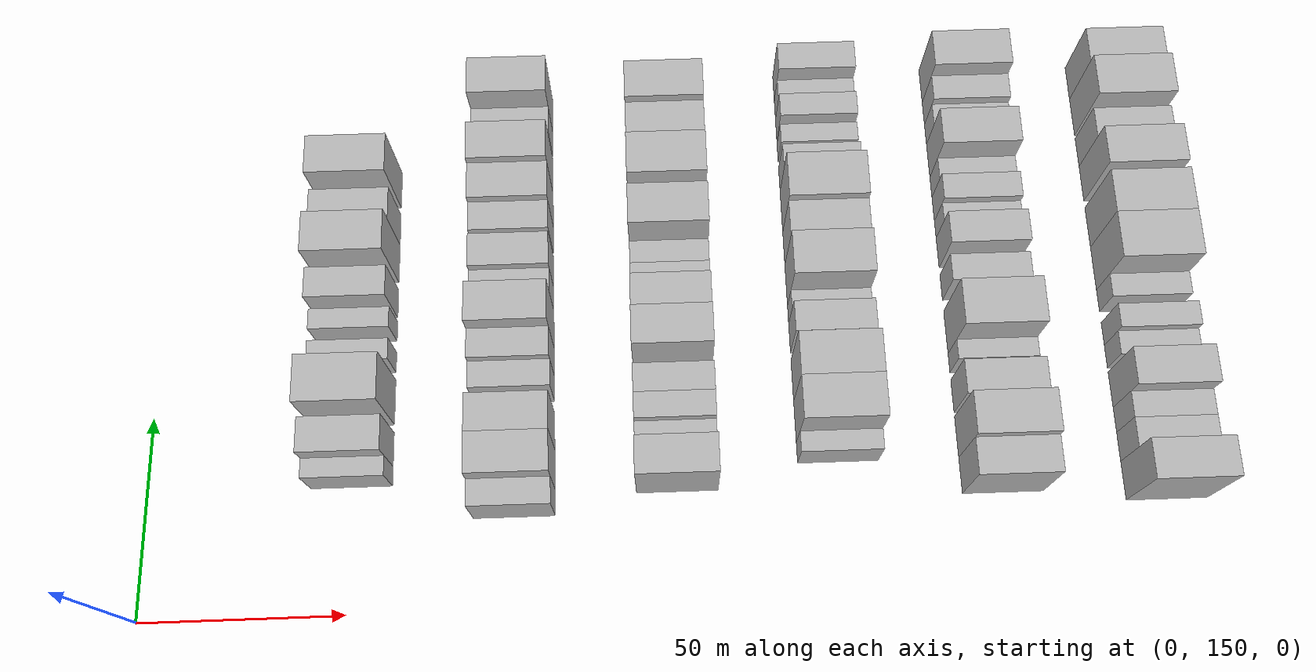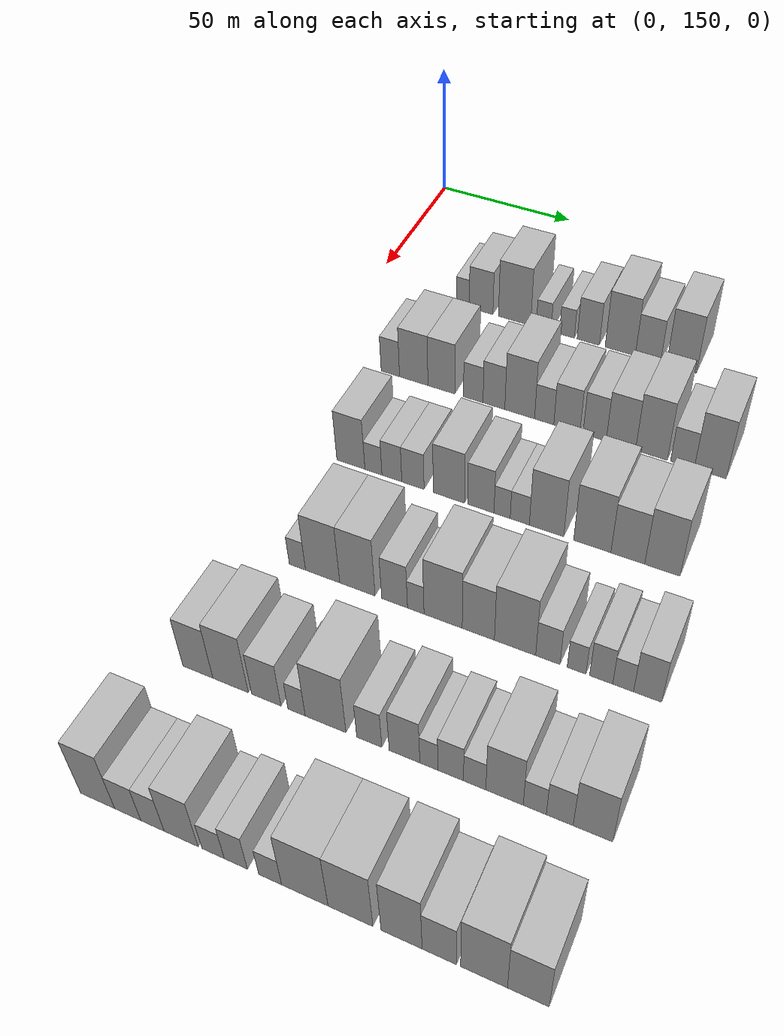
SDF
<sdf version="1.6">
 <world name="default">
  <model name="building_90">
   <static>1</static>
   <pose>50.0000 183.5090 0 0.000000 0.000000 0.000000</pose>
   <link name="link">
    <pose>0 0 6.00 0 0 0</pose>
    <collision name="collision"><geometry><box><size>20.0000 4.8456 12.0000</size></box></geometry></collision>
    <visual name="visual">
     <cast_shadows>0</cast_shadows>
     <geometry><box><size>20.0000 4.8456 12.0000</size></box></geometry>
     <material>
      <script>
       <uri>model://HANNAS_wall/materials/scripts</uri>
       <uri>model://HANNAS_wall/materials/textures</uri>
       <name>vrc/HANNAS_wall</name>
      </script>
     </material>
    </visual>
   </link>
  </model>
  <model name="building_91">
   <static>1</static>
   <pose>50.0000 190.2641 0 0.000000 0.000000 0.000000</pose>
   <link name="link">
    <pose>0 0 9.00 0 0 0</pose>
    <collision name="collision"><geometry><box><size>20.0000 8.6647 18.0000</size></box></geometry></collision>
    <visual name="visual">
     <cast_shadows>0</cast_shadows>
     <geometry><box><size>20.0000 8.6647 18.0000</size></box></geometry>
     <material>
      <script>
       <uri>model://HANNAS_wall/materials/scripts</uri>
       <uri>model://HANNAS_wall/materials/textures</uri>
       <name>vrc/HANNAS_wall</name>
      </script>
     </material>
    </visual>
   </link>
  </model>
  <model name="building_92">
   <static>1</static>
   <pose>50.0000 202.4244 0 0.000000 0.000000 0.000000</pose>
   <link name="link">
    <pose>0 0 12.00 0 0 0</pose>
    <collision name="collision"><geometry><box><size>20.0000 11.6558 24.0000</size></box></geometry></collision>
    <visual name="visual">
     <cast_shadows>0</cast_shadows>
     <geometry><box><size>20.0000 11.6558 24.0000</size></box></geometry>
     <material>
      <script>
       <uri>model://HANNAS_wall/materials/scripts</uri>
       <uri>model://HANNAS_wall/materials/textures</uri>
       <name>vrc/HANNAS_wall</name>
      </script>
     </material>
    </visual>
   </link>
  </model>
  <model name="building_93">
   <static>1</static>
   <pose>50.0000 212.9079 0 0.000000 0.000000 0.000000</pose>
   <link name="link">
    <pose>0 0 6.00 0 0 0</pose>
    <collision name="collision"><geometry><box><size>20.0000 5.3112 12.0000</size></box></geometry></collision>
    <visual name="visual">
     <cast_shadows>0</cast_shadows>
     <geometry><box><size>20.0000 5.3112 12.0000</size></box></geometry>
     <material>
      <script>
       <uri>model://HANNAS_wall/materials/scripts</uri>
       <uri>model://HANNAS_wall/materials/textures</uri>
       <name>vrc/HANNAS_wall</name>
      </script>
     </material>
    </visual>
   </link>
  </model>
  <model name="building_94">
   <static>1</static>
   <pose>50.0000 221.1728 0 0.000000 0.000000 0.000000</pose>
   <link name="link">
    <pose>0 0 6.00 0 0 0</pose>
    <collision name="collision"><geometry><box><size>20.0000 5.2186 12.0000</size></box></geometry></collision>
    <visual name="visual">
     <cast_shadows>0</cast_shadows>
     <geometry><box><size>20.0000 5.2186 12.0000</size></box></geometry>
     <material>
      <script>
       <uri>model://HANNAS_wall/materials/scripts</uri>
       <uri>model://HANNAS_wall/materials/textures</uri>
       <name>vrc/HANNAS_wall</name>
      </script>
     </material>
    </visual>
   </link>
  </model>
  <model name="building_95">
   <static>1</static>
   <pose>50.0000 228.6493 0 0.000000 0.000000 0.000000</pose>
   <link name="link">
    <pose>0 0 9.00 0 0 0</pose>
    <collision name="collision"><geometry><box><size>20.0000 7.7344 18.0000</size></box></geometry></collision>
    <visual name="visual">
     <cast_shadows>0</cast_shadows>
     <geometry><box><size>20.0000 7.7344 18.0000</size></box></geometry>
     <material>
      <script>
       <uri>model://HANNAS_wall/materials/scripts</uri>
       <uri>model://HANNAS_wall/materials/textures</uri>
       <name>vrc/HANNAS_wall</name>
      </script>
     </material>
    </visual>
   </link>
  </model>
  <model name="building_96">
   <static>1</static>
   <pose>50.0000 239.6953 0 0.000000 0.000000 0.000000</pose>
   <link name="link">
    <pose>0 0 12.00 0 0 0</pose>
    <collision name="collision"><geometry><box><size>20.0000 10.3576 24.0000</size></box></geometry></collision>
    <visual name="visual">
     <cast_shadows>0</cast_shadows>
     <geometry><box><size>20.0000 10.3576 24.0000</size></box></geometry>
     <material>
      <script>
       <uri>model://HANNAS_wall/materials/scripts</uri>
       <uri>model://HANNAS_wall/materials/textures</uri>
       <name>vrc/HANNAS_wall</name>
      </script>
     </material>
    </visual>
   </link>
  </model>
  <model name="building_97">
   <static>1</static>
   <pose>50.0000 249.1597 0 0.000000 0.000000 0.000000</pose>
   <link name="link">
    <pose>0 0 9.00 0 0 0</pose>
    <collision name="collision"><geometry><box><size>20.0000 8.5712 18.0000</size></box></geometry></collision>
    <visual name="visual">
     <cast_shadows>0</cast_shadows>
     <geometry><box><size>20.0000 8.5712 18.0000</size></box></geometry>
     <material>
      <script>
       <uri>model://HANNAS_wall/materials/scripts</uri>
       <uri>model://HANNAS_wall/materials/textures</uri>
       <name>vrc/HANNAS_wall</name>
      </script>
     </material>
    </visual>
   </link>
  </model>
  <model name="building_98">
   <static>1</static>
   <pose>50.0000 260.4340 0 0.000000 0.000000 0.000000</pose>
   <link name="link">
    <pose>0 0 12.00 0 0 0</pose>
    <collision name="collision"><geometry><box><size>20.0000 9.9774 24.0000</size></box></geometry></collision>
    <visual name="visual">
     <cast_shadows>0</cast_shadows>
     <geometry><box><size>20.0000 9.9774 24.0000</size></box></geometry>
     <material>
      <script>
       <uri>model://HANNAS_wall/materials/scripts</uri>
       <uri>model://HANNAS_wall/materials/textures</uri>
       <name>vrc/HANNAS_wall</name>
      </script>
     </material>
    </visual>
   </link>
  </model>
  <model name="building_222">
   <static>1</static>
   <pose>90.0000 175.5987 0 0.000000 0.000000 0.000000</pose>
   <link name="link">
    <pose>0 0 7.50 0 0 0</pose>
    <collision name="collision"><geometry><box><size>20.0000 6.5443 15.0000</size></box></geometry></collision>
    <visual name="visual">
     <cast_shadows>0</cast_shadows>
     <geometry><box><size>20.0000 6.5443 15.0000</size></box></geometry>
     <material>
      <script>
       <uri>model://HANNAS_wall/materials/scripts</uri>
       <uri>model://HANNAS_wall/materials/textures</uri>
       <name>vrc/HANNAS_wall</name>
      </script>
     </material>
    </visual>
   </link>
  </model>
  <model name="building_223">
   <static>1</static>
   <pose>90.0000 183.8866 0 0.000000 0.000000 0.000000</pose>
   <link name="link">
    <pose>0 0 10.50 0 0 0</pose>
    <collision name="collision"><geometry><box><size>20.0000 10.0315 21.0000</size></box></geometry></collision>
    <visual name="visual">
     <cast_shadows>0</cast_shadows>
     <geometry><box><size>20.0000 10.0315 21.0000</size></box></geometry>
     <material>
      <script>
       <uri>model://HANNAS_wall/materials/scripts</uri>
       <uri>model://HANNAS_wall/materials/textures</uri>
       <name>vrc/HANNAS_wall</name>
      </script>
     </material>
    </visual>
   </link>
  </model>
  <model name="building_224">
   <static>1</static>
   <pose>90.0000 193.5751 0 0.000000 0.000000 0.000000</pose>
   <link name="link">
    <pose>0 0 10.50 0 0 0</pose>
    <collision name="collision"><geometry><box><size>20.0000 9.3455 21.0000</size></box></geometry></collision>
    <visual name="visual">
     <cast_shadows>0</cast_shadows>
     <geometry><box><size>20.0000 9.3455 21.0000</size></box></geometry>
     <material>
      <script>
       <uri>model://HANNAS_wall/materials/scripts</uri>
       <uri>model://HANNAS_wall/materials/textures</uri>
       <name>vrc/HANNAS_wall</name>
      </script>
     </material>
    </visual>
   </link>
  </model>
  <model name="building_225">
   <static>1</static>
   <pose>90.0000 204.5754 0 0.000000 0.000000 0.000000</pose>
   <link name="link">
    <pose>0 0 7.50 0 0 0</pose>
    <collision name="collision"><geometry><box><size>20.0000 6.6553 15.0000</size></box></geometry></collision>
    <visual name="visual">
     <cast_shadows>0</cast_shadows>
     <geometry><box><size>20.0000 6.6553 15.0000</size></box></geometry>
     <material>
      <script>
       <uri>model://HANNAS_wall/materials/scripts</uri>
       <uri>model://HANNAS_wall/materials/textures</uri>
       <name>vrc/HANNAS_wall</name>
      </script>
     </material>
    </visual>
   </link>
  </model>
  <model name="building_226">
   <static>1</static>
   <pose>90.0000 211.5878 0 0.000000 0.000000 0.000000</pose>
   <link name="link">
    <pose>0 0 9.00 0 0 0</pose>
    <collision name="collision"><geometry><box><size>20.0000 7.3695 18.0000</size></box></geometry></collision>
    <visual name="visual">
     <cast_shadows>0</cast_shadows>
     <geometry><box><size>20.0000 7.3695 18.0000</size></box></geometry>
     <material>
      <script>
       <uri>model://HANNAS_wall/materials/scripts</uri>
       <uri>model://HANNAS_wall/materials/textures</uri>
       <name>vrc/HANNAS_wall</name>
      </script>
     </material>
    </visual>
   </link>
  </model>
  <model name="building_227">
   <static>1</static>
   <pose>90.0000 220.2542 0 0.000000 0.000000 0.000000</pose>
   <link name="link">
    <pose>0 0 12.00 0 0 0</pose>
    <collision name="collision"><geometry><box><size>20.0000 9.9634 24.0000</size></box></geometry></collision>
    <visual name="visual">
     <cast_shadows>0</cast_shadows>
     <geometry><box><size>20.0000 9.9634 24.0000</size></box></geometry>
     <material>
      <script>
       <uri>model://HANNAS_wall/materials/scripts</uri>
       <uri>model://HANNAS_wall/materials/textures</uri>
       <name>vrc/HANNAS_wall</name>
      </script>
     </material>
    </visual>
   </link>
  </model>
  <model name="building_228">
   <static>1</static>
   <pose>90.0000 228.4111 0 0.000000 0.000000 0.000000</pose>
   <link name="link">
    <pose>0 0 7.50 0 0 0</pose>
    <collision name="collision"><geometry><box><size>20.0000 6.3503 15.0000</size></box></geometry></collision>
    <visual name="visual">
     <cast_shadows>0</cast_shadows>
     <geometry><box><size>20.0000 6.3503 15.0000</size></box></geometry>
     <material>
      <script>
       <uri>model://HANNAS_wall/materials/scripts</uri>
       <uri>model://HANNAS_wall/materials/textures</uri>
       <name>vrc/HANNAS_wall</name>
      </script>
     </material>
    </visual>
   </link>
  </model>
  <model name="building_229">
   <static>1</static>
   <pose>90.0000 235.8508 0 0.000000 0.000000 0.000000</pose>
   <link name="link">
    <pose>0 0 9.00 0 0 0</pose>
    <collision name="collision"><geometry><box><size>20.0000 8.5290 18.0000</size></box></geometry></collision>
    <visual name="visual">
     <cast_shadows>0</cast_shadows>
     <geometry><box><size>20.0000 8.5290 18.0000</size></box></geometry>
     <material>
      <script>
       <uri>model://HANNAS_wall/materials/scripts</uri>
       <uri>model://HANNAS_wall/materials/textures</uri>
       <name>vrc/HANNAS_wall</name>
      </script>
     </material>
    </visual>
   </link>
  </model>
  <model name="building_230">
   <static>1</static>
   <pose>90.0000 244.8529 0 0.000000 0.000000 0.000000</pose>
   <link name="link">
    <pose>0 0 9.00 0 0 0</pose>
    <collision name="collision"><geometry><box><size>20.0000 7.4754 18.0000</size></box></geometry></collision>
    <visual name="visual">
     <cast_shadows>0</cast_shadows>
     <geometry><box><size>20.0000 7.4754 18.0000</size></box></geometry>
     <material>
      <script>
       <uri>model://HANNAS_wall/materials/scripts</uri>
       <uri>model://HANNAS_wall/materials/textures</uri>
       <name>vrc/HANNAS_wall</name>
      </script>
     </material>
    </visual>
   </link>
  </model>
  <model name="building_231">
   <static>1</static>
   <pose>90.0000 253.2640 0 0.000000 0.000000 0.000000</pose>
   <link name="link">
    <pose>0 0 10.50 0 0 0</pose>
    <collision name="collision"><geometry><box><size>20.0000 9.3467 21.0000</size></box></geometry></collision>
    <visual name="visual">
     <cast_shadows>0</cast_shadows>
     <geometry><box><size>20.0000 9.3467 21.0000</size></box></geometry>
     <material>
      <script>
       <uri>model://HANNAS_wall/materials/scripts</uri>
       <uri>model://HANNAS_wall/materials/textures</uri>
       <name>vrc/HANNAS_wall</name>
      </script>
     </material>
    </visual>
   </link>
  </model>
  <model name="building_232">
   <static>1</static>
   <pose>90.0000 262.9227 0 0.000000 0.000000 0.000000</pose>
   <link name="link">
    <pose>0 0 12.00 0 0 0</pose>
    <collision name="collision"><geometry><box><size>20.0000 9.9706 24.0000</size></box></geometry></collision>
    <visual name="visual">
     <cast_shadows>0</cast_shadows>
     <geometry><box><size>20.0000 9.9706 24.0000</size></box></geometry>
     <material>
      <script>
       <uri>model://HANNAS_wall/materials/scripts</uri>
       <uri>model://HANNAS_wall/materials/textures</uri>
       <name>vrc/HANNAS_wall</name>
      </script>
     </material>
    </visual>
   </link>
  </model>
  <model name="building_233">
   <static>1</static>
   <pose>90.0000 272.5522 0 0.000000 0.000000 0.000000</pose>
   <link name="link">
    <pose>0 0 7.50 0 0 0</pose>
    <collision name="collision"><geometry><box><size>20.0000 7.2885 15.0000</size></box></geometry></collision>
    <visual name="visual">
     <cast_shadows>0</cast_shadows>
     <geometry><box><size>20.0000 7.2885 15.0000</size></box></geometry>
     <material>
      <script>
       <uri>model://HANNAS_wall/materials/scripts</uri>
       <uri>model://HANNAS_wall/materials/textures</uri>
       <name>vrc/HANNAS_wall</name>
      </script>
     </material>
    </visual>
   </link>
  </model>
  <model name="building_234">
   <static>1</static>
   <pose>90.0000 281.0916 0 0.000000 0.000000 0.000000</pose>
   <link name="link">
    <pose>0 0 12.00 0 0 0</pose>
    <collision name="collision"><geometry><box><size>20.0000 9.7902 24.0000</size></box></geometry></collision>
    <visual name="visual">
     <cast_shadows>0</cast_shadows>
     <geometry><box><size>20.0000 9.7902 24.0000</size></box></geometry>
     <material>
      <script>
       <uri>model://HANNAS_wall/materials/scripts</uri>
       <uri>model://HANNAS_wall/materials/textures</uri>
       <name>vrc/HANNAS_wall</name>
      </script>
     </material>
    </visual>
   </link>
  </model>
  <model name="building_365">
   <static>1</static>
   <pose>130.0000 181.9759 0 0.000000 0.000000 0.000000</pose>
   <link name="link">
    <pose>0 0 10.50 0 0 0</pose>
    <collision name="collision"><geometry><box><size>20.0000 9.3976 21.0000</size></box></geometry></collision>
    <visual name="visual">
     <cast_shadows>0</cast_shadows>
     <geometry><box><size>20.0000 9.3976 21.0000</size></box></geometry>
     <material>
      <script>
       <uri>model://HANNAS_wall/materials/scripts</uri>
       <uri>model://HANNAS_wall/materials/textures</uri>
       <name>vrc/HANNAS_wall</name>
      </script>
     </material>
    </visual>
   </link>
  </model>
  <model name="building_366">
   <static>1</static>
   <pose>130.0000 189.4978 0 0.000000 0.000000 0.000000</pose>
   <link name="link">
    <pose>0 0 6.00 0 0 0</pose>
    <collision name="collision"><geometry><box><size>20.0000 5.6460 12.0000</size></box></geometry></collision>
    <visual name="visual">
     <cast_shadows>0</cast_shadows>
     <geometry><box><size>20.0000 5.6460 12.0000</size></box></geometry>
     <material>
      <script>
       <uri>model://HANNAS_wall/materials/scripts</uri>
       <uri>model://HANNAS_wall/materials/textures</uri>
       <name>vrc/HANNAS_wall</name>
      </script>
     </material>
    </visual>
   </link>
  </model>
  <model name="building_367">
   <static>1</static>
   <pose>130.0000 195.5804 0 0.000000 0.000000 0.000000</pose>
   <link name="link">
    <pose>0 0 7.50 0 0 0</pose>
    <collision name="collision"><geometry><box><size>20.0000 6.5192 15.0000</size></box></geometry></collision>
    <visual name="visual">
     <cast_shadows>0</cast_shadows>
     <geometry><box><size>20.0000 6.5192 15.0000</size></box></geometry>
     <material>
      <script>
       <uri>model://HANNAS_wall/materials/scripts</uri>
       <uri>model://HANNAS_wall/materials/textures</uri>
       <name>vrc/HANNAS_wall</name>
      </script>
     </material>
    </visual>
   </link>
  </model>
  <model name="building_368">
   <static>1</static>
   <pose>130.0000 202.4633 0 0.000000 0.000000 0.000000</pose>
   <link name="link">
    <pose>0 0 7.50 0 0 0</pose>
    <collision name="collision"><geometry><box><size>20.0000 7.2466 15.0000</size></box></geometry></collision>
    <visual name="visual">
     <cast_shadows>0</cast_shadows>
     <geometry><box><size>20.0000 7.2466 15.0000</size></box></geometry>
     <material>
      <script>
       <uri>model://HANNAS_wall/materials/scripts</uri>
       <uri>model://HANNAS_wall/materials/textures</uri>
       <name>vrc/HANNAS_wall</name>
      </script>
     </material>
    </visual>
   </link>
  </model>
  <model name="building_369">
   <static>1</static>
   <pose>130.0000 214.0441 0 0.000000 0.000000 0.000000</pose>
   <link name="link">
    <pose>0 0 10.50 0 0 0</pose>
    <collision name="collision"><geometry><box><size>20.0000 9.9151 21.0000</size></box></geometry></collision>
    <visual name="visual">
     <cast_shadows>0</cast_shadows>
     <geometry><box><size>20.0000 9.9151 21.0000</size></box></geometry>
     <material>
      <script>
       <uri>model://HANNAS_wall/materials/scripts</uri>
       <uri>model://HANNAS_wall/materials/textures</uri>
       <name>vrc/HANNAS_wall</name>
      </script>
     </material>
    </visual>
   </link>
  </model>
  <model name="building_370">
   <static>1</static>
   <pose>130.0000 224.1432 0 0.000000 0.000000 0.000000</pose>
   <link name="link">
    <pose>0 0 9.00 0 0 0</pose>
    <collision name="collision"><geometry><box><size>20.0000 8.2830 18.0000</size></box></geometry></collision>
    <visual name="visual">
     <cast_shadows>0</cast_shadows>
     <geometry><box><size>20.0000 8.2830 18.0000</size></box></geometry>
     <material>
      <script>
       <uri>model://HANNAS_wall/materials/scripts</uri>
       <uri>model://HANNAS_wall/materials/textures</uri>
       <name>vrc/HANNAS_wall</name>
      </script>
     </material>
    </visual>
   </link>
  </model>
  <model name="building_371">
   <static>1</static>
   <pose>130.0000 230.7970 0 0.000000 0.000000 0.000000</pose>
   <link name="link">
    <pose>0 0 6.00 0 0 0</pose>
    <collision name="collision"><geometry><box><size>20.0000 5.0246 12.0000</size></box></geometry></collision>
    <visual name="visual">
     <cast_shadows>0</cast_shadows>
     <geometry><box><size>20.0000 5.0246 12.0000</size></box></geometry>
     <material>
      <script>
       <uri>model://HANNAS_wall/materials/scripts</uri>
       <uri>model://HANNAS_wall/materials/textures</uri>
       <name>vrc/HANNAS_wall</name>
      </script>
     </material>
    </visual>
   </link>
  </model>
  <model name="building_372">
   <static>1</static>
   <pose>130.0000 236.2527 0 0.000000 0.000000 0.000000</pose>
   <link name="link">
    <pose>0 0 6.00 0 0 0</pose>
    <collision name="collision"><geometry><box><size>20.0000 5.8869 12.0000</size></box></geometry></collision>
    <visual name="visual">
     <cast_shadows>0</cast_shadows>
     <geometry><box><size>20.0000 5.8869 12.0000</size></box></geometry>
     <material>
      <script>
       <uri>model://HANNAS_wall/materials/scripts</uri>
       <uri>model://HANNAS_wall/materials/textures</uri>
       <name>vrc/HANNAS_wall</name>
      </script>
     </material>
    </visual>
   </link>
  </model>
  <model name="building_373">
   <static>1</static>
   <pose>130.0000 244.4299 0 0.000000 0.000000 0.000000</pose>
   <link name="link">
    <pose>0 0 12.00 0 0 0</pose>
    <collision name="collision"><geometry><box><size>20.0000 10.4675 24.0000</size></box></geometry></collision>
    <visual name="visual">
     <cast_shadows>0</cast_shadows>
     <geometry><box><size>20.0000 10.4675 24.0000</size></box></geometry>
     <material>
      <script>
       <uri>model://HANNAS_wall/materials/scripts</uri>
       <uri>model://HANNAS_wall/materials/textures</uri>
       <name>vrc/HANNAS_wall</name>
      </script>
     </material>
    </visual>
   </link>
  </model>
  <model name="building_374">
   <static>1</static>
   <pose>130.0000 258.1884 0 0.000000 0.000000 0.000000</pose>
   <link name="link">
    <pose>0 0 12.00 0 0 0</pose>
    <collision name="collision"><geometry><box><size>20.0000 11.0496 24.0000</size></box></geometry></collision>
    <visual name="visual">
     <cast_shadows>0</cast_shadows>
     <geometry><box><size>20.0000 11.0496 24.0000</size></box></geometry>
     <material>
      <script>
       <uri>model://HANNAS_wall/materials/scripts</uri>
       <uri>model://HANNAS_wall/materials/textures</uri>
       <name>vrc/HANNAS_wall</name>
      </script>
     </material>
    </visual>
   </link>
  </model>
  <model name="building_375">
   <static>1</static>
   <pose>130.0000 268.6583 0 0.000000 0.000000 0.000000</pose>
   <link name="link">
    <pose>0 0 10.50 0 0 0</pose>
    <collision name="collision"><geometry><box><size>20.0000 9.8902 21.0000</size></box></geometry></collision>
    <visual name="visual">
     <cast_shadows>0</cast_shadows>
     <geometry><box><size>20.0000 9.8902 21.0000</size></box></geometry>
     <material>
      <script>
       <uri>model://HANNAS_wall/materials/scripts</uri>
       <uri>model://HANNAS_wall/materials/textures</uri>
       <name>vrc/HANNAS_wall</name>
      </script>
     </material>
    </visual>
   </link>
  </model>
  <model name="building_376">
   <static>1</static>
   <pose>130.0000 278.6879 0 0.000000 0.000000 0.000000</pose>
   <link name="link">
    <pose>0 0 12.00 0 0 0</pose>
    <collision name="collision"><geometry><box><size>20.0000 10.1692 24.0000</size></box></geometry></collision>
    <visual name="visual">
     <cast_shadows>0</cast_shadows>
     <geometry><box><size>20.0000 10.1692 24.0000</size></box></geometry>
     <material>
      <script>
       <uri>model://HANNAS_wall/materials/scripts</uri>
       <uri>model://HANNAS_wall/materials/textures</uri>
       <name>vrc/HANNAS_wall</name>
      </script>
     </material>
    </visual>
   </link>
  </model>
  <model name="building_504">
   <static>1</static>
   <pose>170.0000 185.9402 0 0.000000 0.000000 0.000000</pose>
   <link name="link">
    <pose>0 0 6.00 0 0 0</pose>
    <collision name="collision"><geometry><box><size>20.0000 5.1039 12.0000</size></box></geometry></collision>
    <visual name="visual">
     <cast_shadows>0</cast_shadows>
     <geometry><box><size>20.0000 5.1039 12.0000</size></box></geometry>
     <material>
      <script>
       <uri>model://HANNAS_wall/materials/scripts</uri>
       <uri>model://HANNAS_wall/materials/textures</uri>
       <name>vrc/HANNAS_wall</name>
      </script>
     </material>
    </visual>
   </link>
  </model>
  <model name="building_505">
   <static>1</static>
   <pose>170.0000 193.8205 0 0.000000 0.000000 0.000000</pose>
   <link name="link">
    <pose>0 0 12.00 0 0 0</pose>
    <collision name="collision"><geometry><box><size>20.0000 10.6567 24.0000</size></box></geometry></collision>
    <visual name="visual">
     <cast_shadows>0</cast_shadows>
     <geometry><box><size>20.0000 10.6567 24.0000</size></box></geometry>
     <material>
      <script>
       <uri>model://HANNAS_wall/materials/scripts</uri>
       <uri>model://HANNAS_wall/materials/textures</uri>
       <name>vrc/HANNAS_wall</name>
      </script>
     </material>
    </visual>
   </link>
  </model>
  <model name="building_506">
   <static>1</static>
   <pose>170.0000 204.5535 0 0.000000 0.000000 0.000000</pose>
   <link name="link">
    <pose>0 0 12.00 0 0 0</pose>
    <collision name="collision"><geometry><box><size>20.0000 10.8092 24.0000</size></box></geometry></collision>
    <visual name="visual">
     <cast_shadows>0</cast_shadows>
     <geometry><box><size>20.0000 10.8092 24.0000</size></box></geometry>
     <material>
      <script>
       <uri>model://HANNAS_wall/materials/scripts</uri>
       <uri>model://HANNAS_wall/materials/textures</uri>
       <name>vrc/HANNAS_wall</name>
      </script>
     </material>
    </visual>
   </link>
  </model>
  <model name="building_507">
   <static>1</static>
   <pose>170.0000 215.8285 0 0.000000 0.000000 0.000000</pose>
   <link name="link">
    <pose>0 0 9.00 0 0 0</pose>
    <collision name="collision"><geometry><box><size>20.0000 7.7407 18.0000</size></box></geometry></collision>
    <visual name="visual">
     <cast_shadows>0</cast_shadows>
     <geometry><box><size>20.0000 7.7407 18.0000</size></box></geometry>
     <material>
      <script>
       <uri>model://HANNAS_wall/materials/scripts</uri>
       <uri>model://HANNAS_wall/materials/textures</uri>
       <name>vrc/HANNAS_wall</name>
      </script>
     </material>
    </visual>
   </link>
  </model>
  <model name="building_508">
   <static>1</static>
   <pose>170.0000 222.1536 0 0.000000 0.000000 0.000000</pose>
   <link name="link">
    <pose>0 0 6.00 0 0 0</pose>
    <collision name="collision"><geometry><box><size>20.0000 4.9097 12.0000</size></box></geometry></collision>
    <visual name="visual">
     <cast_shadows>0</cast_shadows>
     <geometry><box><size>20.0000 4.9097 12.0000</size></box></geometry>
     <material>
      <script>
       <uri>model://HANNAS_wall/materials/scripts</uri>
       <uri>model://HANNAS_wall/materials/textures</uri>
       <name>vrc/HANNAS_wall</name>
      </script>
     </material>
    </visual>
   </link>
  </model>
  <model name="building_509">
   <static>1</static>
   <pose>170.0000 230.1897 0 0.000000 0.000000 0.000000</pose>
   <link name="link">
    <pose>0 0 12.00 0 0 0</pose>
    <collision name="collision"><geometry><box><size>20.0000 11.1626 24.0000</size></box></geometry></collision>
    <visual name="visual">
     <cast_shadows>0</cast_shadows>
     <geometry><box><size>20.0000 11.1626 24.0000</size></box></geometry>
     <material>
      <script>
       <uri>model://HANNAS_wall/materials/scripts</uri>
       <uri>model://HANNAS_wall/materials/textures</uri>
       <name>vrc/HANNAS_wall</name>
      </script>
     </material>
    </visual>
   </link>
  </model>
  <model name="building_510">
   <static>1</static>
   <pose>170.0000 240.4030 0 0.000000 0.000000 0.000000</pose>
   <link name="link">
    <pose>0 0 10.50 0 0 0</pose>
    <collision name="collision"><geometry><box><size>20.0000 9.2640 21.0000</size></box></geometry></collision>
    <visual name="visual">
     <cast_shadows>0</cast_shadows>
     <geometry><box><size>20.0000 9.2640 21.0000</size></box></geometry>
     <material>
      <script>
       <uri>model://HANNAS_wall/materials/scripts</uri>
       <uri>model://HANNAS_wall/materials/textures</uri>
       <name>vrc/HANNAS_wall</name>
      </script>
     </material>
    </visual>
   </link>
  </model>
  <model name="building_511">
   <static>1</static>
   <pose>170.0000 250.8565 0 0.000000 0.000000 0.000000</pose>
   <link name="link">
    <pose>0 0 12.00 0 0 0</pose>
    <collision name="collision"><geometry><box><size>20.0000 11.6429 24.0000</size></box></geometry></collision>
    <visual name="visual">
     <cast_shadows>0</cast_shadows>
     <geometry><box><size>20.0000 11.6429 24.0000</size></box></geometry>
     <material>
      <script>
       <uri>model://HANNAS_wall/materials/scripts</uri>
       <uri>model://HANNAS_wall/materials/textures</uri>
       <name>vrc/HANNAS_wall</name>
      </script>
     </material>
    </visual>
   </link>
  </model>
  <model name="building_512">
   <static>1</static>
   <pose>170.0000 260.0556 0 0.000000 0.000000 0.000000</pose>
   <link name="link">
    <pose>0 0 7.50 0 0 0</pose>
    <collision name="collision"><geometry><box><size>20.0000 6.7553 15.0000</size></box></geometry></collision>
    <visual name="visual">
     <cast_shadows>0</cast_shadows>
     <geometry><box><size>20.0000 6.7553 15.0000</size></box></geometry>
     <material>
      <script>
       <uri>model://HANNAS_wall/materials/scripts</uri>
       <uri>model://HANNAS_wall/materials/textures</uri>
       <name>vrc/HANNAS_wall</name>
      </script>
     </material>
    </visual>
   </link>
  </model>
  <model name="building_513">
   <static>1</static>
   <pose>170.0000 267.9942 0 0.000000 0.000000 0.000000</pose>
   <link name="link">
    <pose>0 0 6.00 0 0 0</pose>
    <collision name="collision"><geometry><box><size>20.0000 5.1219 12.0000</size></box></geometry></collision>
    <visual name="visual">
     <cast_shadows>0</cast_shadows>
     <geometry><box><size>20.0000 5.1219 12.0000</size></box></geometry>
     <material>
      <script>
       <uri>model://HANNAS_wall/materials/scripts</uri>
       <uri>model://HANNAS_wall/materials/textures</uri>
       <name>vrc/HANNAS_wall</name>
      </script>
     </material>
    </visual>
   </link>
  </model>
  <model name="building_514">
   <static>1</static>
   <pose>170.0000 274.6760 0 0.000000 0.000000 0.000000</pose>
   <link name="link">
    <pose>0 0 7.50 0 0 0</pose>
    <collision name="collision"><geometry><box><size>20.0000 6.2417 15.0000</size></box></geometry></collision>
    <visual name="visual">
     <cast_shadows>0</cast_shadows>
     <geometry><box><size>20.0000 6.2417 15.0000</size></box></geometry>
     <material>
      <script>
       <uri>model://HANNAS_wall/materials/scripts</uri>
       <uri>model://HANNAS_wall/materials/textures</uri>
       <name>vrc/HANNAS_wall</name>
      </script>
     </material>
    </visual>
   </link>
  </model>
  <model name="building_515">
   <static>1</static>
   <pose>170.0000 280.5840 0 0.000000 0.000000 0.000000</pose>
   <link name="link">
    <pose>0 0 6.00 0 0 0</pose>
    <collision name="collision"><geometry><box><size>20.0000 5.5743 12.0000</size></box></geometry></collision>
    <visual name="visual">
     <cast_shadows>0</cast_shadows>
     <geometry><box><size>20.0000 5.5743 12.0000</size></box></geometry>
     <material>
      <script>
       <uri>model://HANNAS_wall/materials/scripts</uri>
       <uri>model://HANNAS_wall/materials/textures</uri>
       <name>vrc/HANNAS_wall</name>
      </script>
     </material>
    </visual>
   </link>
  </model>
  <model name="building_516">
   <static>1</static>
   <pose>170.0000 287.1145 0 0.000000 0.000000 0.000000</pose>
   <link name="link">
    <pose>0 0 9.00 0 0 0</pose>
    <collision name="collision"><geometry><box><size>20.0000 7.4866 18.0000</size></box></geometry></collision>
    <visual name="visual">
     <cast_shadows>0</cast_shadows>
     <geometry><box><size>20.0000 7.4866 18.0000</size></box></geometry>
     <material>
      <script>
       <uri>model://HANNAS_wall/materials/scripts</uri>
       <uri>model://HANNAS_wall/materials/textures</uri>
       <name>vrc/HANNAS_wall</name>
      </script>
     </material>
    </visual>
   </link>
  </model>
  <model name="building_631">
   <static>1</static>
   <pose>210.0000 178.8619 0 0.000000 0.000000 0.000000</pose>
   <link name="link">
    <pose>0 0 10.50 0 0 0</pose>
    <collision name="collision"><geometry><box><size>20.0000 8.9911 21.0000</size></box></geometry></collision>
    <visual name="visual">
     <cast_shadows>0</cast_shadows>
     <geometry><box><size>20.0000 8.9911 21.0000</size></box></geometry>
     <material>
      <script>
       <uri>model://HANNAS_wall/materials/scripts</uri>
       <uri>model://HANNAS_wall/materials/textures</uri>
       <name>vrc/HANNAS_wall</name>
      </script>
     </material>
    </visual>
   </link>
  </model>
  <model name="building_632">
   <static>1</static>
   <pose>210.0000 188.6134 0 0.000000 0.000000 0.000000</pose>
   <link name="link">
    <pose>0 0 12.00 0 0 0</pose>
    <collision name="collision"><geometry><box><size>20.0000 10.5120 24.0000</size></box></geometry></collision>
    <visual name="visual">
     <cast_shadows>0</cast_shadows>
     <geometry><box><size>20.0000 10.5120 24.0000</size></box></geometry>
     <material>
      <script>
       <uri>model://HANNAS_wall/materials/scripts</uri>
       <uri>model://HANNAS_wall/materials/textures</uri>
       <name>vrc/HANNAS_wall</name>
      </script>
     </material>
    </visual>
   </link>
  </model>
  <model name="building_633">
   <static>1</static>
   <pose>210.0000 199.1249 0 0.000000 0.000000 0.000000</pose>
   <link name="link">
    <pose>0 0 9.00 0 0 0</pose>
    <collision name="collision"><geometry><box><size>20.0000 8.5111 18.0000</size></box></geometry></collision>
    <visual name="visual">
     <cast_shadows>0</cast_shadows>
     <geometry><box><size>20.0000 8.5111 18.0000</size></box></geometry>
     <material>
      <script>
       <uri>model://HANNAS_wall/materials/scripts</uri>
       <uri>model://HANNAS_wall/materials/textures</uri>
       <name>vrc/HANNAS_wall</name>
      </script>
     </material>
    </visual>
   </link>
  </model>
  <model name="building_634">
   <static>1</static>
   <pose>210.0000 207.8626 0 0.000000 0.000000 0.000000</pose>
   <link name="link">
    <pose>0 0 6.00 0 0 0</pose>
    <collision name="collision"><geometry><box><size>20.0000 4.9641 12.0000</size></box></geometry></collision>
    <visual name="visual">
     <cast_shadows>0</cast_shadows>
     <geometry><box><size>20.0000 4.9641 12.0000</size></box></geometry>
     <material>
      <script>
       <uri>model://HANNAS_wall/materials/scripts</uri>
       <uri>model://HANNAS_wall/materials/textures</uri>
       <name>vrc/HANNAS_wall</name>
      </script>
     </material>
    </visual>
   </link>
  </model>
  <model name="building_635">
   <static>1</static>
   <pose>210.0000 216.0832 0 0.000000 0.000000 0.000000</pose>
   <link name="link">
    <pose>0 0 12.00 0 0 0</pose>
    <collision name="collision"><geometry><box><size>20.0000 11.4771 24.0000</size></box></geometry></collision>
    <visual name="visual">
     <cast_shadows>0</cast_shadows>
     <geometry><box><size>20.0000 11.4771 24.0000</size></box></geometry>
     <material>
      <script>
       <uri>model://HANNAS_wall/materials/scripts</uri>
       <uri>model://HANNAS_wall/materials/textures</uri>
       <name>vrc/HANNAS_wall</name>
      </script>
     </material>
    </visual>
   </link>
  </model>
  <model name="building_636">
   <static>1</static>
   <pose>210.0000 228.2739 0 0.000000 0.000000 0.000000</pose>
   <link name="link">
    <pose>0 0 7.50 0 0 0</pose>
    <collision name="collision"><geometry><box><size>20.0000 6.9044 15.0000</size></box></geometry></collision>
    <visual name="visual">
     <cast_shadows>0</cast_shadows>
     <geometry><box><size>20.0000 6.9044 15.0000</size></box></geometry>
     <material>
      <script>
       <uri>model://HANNAS_wall/materials/scripts</uri>
       <uri>model://HANNAS_wall/materials/textures</uri>
       <name>vrc/HANNAS_wall</name>
      </script>
     </material>
    </visual>
   </link>
  </model>
  <model name="building_637">
   <static>1</static>
   <pose>210.0000 237.8690 0 0.000000 0.000000 0.000000</pose>
   <link name="link">
    <pose>0 0 9.00 0 0 0</pose>
    <collision name="collision"><geometry><box><size>20.0000 8.2859 18.0000</size></box></geometry></collision>
    <visual name="visual">
     <cast_shadows>0</cast_shadows>
     <geometry><box><size>20.0000 8.2859 18.0000</size></box></geometry>
     <material>
      <script>
       <uri>model://HANNAS_wall/materials/scripts</uri>
       <uri>model://HANNAS_wall/materials/textures</uri>
       <name>vrc/HANNAS_wall</name>
      </script>
     </material>
    </visual>
   </link>
  </model>
  <model name="building_638">
   <static>1</static>
   <pose>210.0000 244.4255 0 0.000000 0.000000 0.000000</pose>
   <link name="link">
    <pose>0 0 6.00 0 0 0</pose>
    <collision name="collision"><geometry><box><size>20.0000 4.8270 12.0000</size></box></geometry></collision>
    <visual name="visual">
     <cast_shadows>0</cast_shadows>
     <geometry><box><size>20.0000 4.8270 12.0000</size></box></geometry>
     <material>
      <script>
       <uri>model://HANNAS_wall/materials/scripts</uri>
       <uri>model://HANNAS_wall/materials/textures</uri>
       <name>vrc/HANNAS_wall</name>
      </script>
     </material>
    </visual>
   </link>
  </model>
  <model name="building_639">
   <static>1</static>
   <pose>210.0000 250.2296 0 0.000000 0.000000 0.000000</pose>
   <link name="link">
    <pose>0 0 7.50 0 0 0</pose>
    <collision name="collision"><geometry><box><size>20.0000 6.7811 15.0000</size></box></geometry></collision>
    <visual name="visual">
     <cast_shadows>0</cast_shadows>
     <geometry><box><size>20.0000 6.7811 15.0000</size></box></geometry>
     <material>
      <script>
       <uri>model://HANNAS_wall/materials/scripts</uri>
       <uri>model://HANNAS_wall/materials/textures</uri>
       <name>vrc/HANNAS_wall</name>
      </script>
     </material>
    </visual>
   </link>
  </model>
  <model name="building_640">
   <static>1</static>
   <pose>210.0000 256.5308 0 0.000000 0.000000 0.000000</pose>
   <link name="link">
    <pose>0 0 6.00 0 0 0</pose>
    <collision name="collision"><geometry><box><size>20.0000 5.8213 12.0000</size></box></geometry></collision>
    <visual name="visual">
     <cast_shadows>0</cast_shadows>
     <geometry><box><size>20.0000 5.8213 12.0000</size></box></geometry>
     <material>
      <script>
       <uri>model://HANNAS_wall/materials/scripts</uri>
       <uri>model://HANNAS_wall/materials/textures</uri>
       <name>vrc/HANNAS_wall</name>
      </script>
     </material>
    </visual>
   </link>
  </model>
  <model name="building_641">
   <static>1</static>
   <pose>210.0000 264.2476 0 0.000000 0.000000 0.000000</pose>
   <link name="link">
    <pose>0 0 10.50 0 0 0</pose>
    <collision name="collision"><geometry><box><size>20.0000 9.6122 21.0000</size></box></geometry></collision>
    <visual name="visual">
     <cast_shadows>0</cast_shadows>
     <geometry><box><size>20.0000 9.6122 21.0000</size></box></geometry>
     <material>
      <script>
       <uri>model://HANNAS_wall/materials/scripts</uri>
       <uri>model://HANNAS_wall/materials/textures</uri>
       <name>vrc/HANNAS_wall</name>
      </script>
     </material>
    </visual>
   </link>
  </model>
  <model name="building_642">
   <static>1</static>
   <pose>210.0000 271.9794 0 0.000000 0.000000 0.000000</pose>
   <link name="link">
    <pose>0 0 6.00 0 0 0</pose>
    <collision name="collision"><geometry><box><size>20.0000 5.8514 12.0000</size></box></geometry></collision>
    <visual name="visual">
     <cast_shadows>0</cast_shadows>
     <geometry><box><size>20.0000 5.8514 12.0000</size></box></geometry>
     <material>
      <script>
       <uri>model://HANNAS_wall/materials/scripts</uri>
       <uri>model://HANNAS_wall/materials/textures</uri>
       <name>vrc/HANNAS_wall</name>
      </script>
     </material>
    </visual>
   </link>
  </model>
  <model name="building_643">
   <static>1</static>
   <pose>210.0000 278.2681 0 0.000000 0.000000 0.000000</pose>
   <link name="link">
    <pose>0 0 7.50 0 0 0</pose>
    <collision name="collision"><geometry><box><size>20.0000 6.7261 15.0000</size></box></geometry></collision>
    <visual name="visual">
     <cast_shadows>0</cast_shadows>
     <geometry><box><size>20.0000 6.7261 15.0000</size></box></geometry>
     <material>
      <script>
       <uri>model://HANNAS_wall/materials/scripts</uri>
       <uri>model://HANNAS_wall/materials/textures</uri>
       <name>vrc/HANNAS_wall</name>
      </script>
     </material>
    </visual>
   </link>
  </model>
  <model name="building_644">
   <static>1</static>
   <pose>210.0000 286.5195 0 0.000000 0.000000 0.000000</pose>
   <link name="link">
    <pose>0 0 10.50 0 0 0</pose>
    <collision name="collision"><geometry><box><size>20.0000 9.7766 21.0000</size></box></geometry></collision>
    <visual name="visual">
     <cast_shadows>0</cast_shadows>
     <geometry><box><size>20.0000 9.7766 21.0000</size></box></geometry>
     <material>
      <script>
       <uri>model://HANNAS_wall/materials/scripts</uri>
       <uri>model://HANNAS_wall/materials/textures</uri>
       <name>vrc/HANNAS_wall</name>
      </script>
     </material>
    </visual>
   </link>
  </model>
  <model name="building_760">
   <static>1</static>
   <pose>250.0000 176.1937 0 0.000000 0.000000 0.000000</pose>
   <link name="link">
    <pose>0 0 12.00 0 0 0</pose>
    <collision name="collision"><geometry><box><size>20.0000 9.6989 24.0000</size></box></geometry></collision>
    <visual name="visual">
     <cast_shadows>0</cast_shadows>
     <geometry><box><size>20.0000 9.6989 24.0000</size></box></geometry>
     <material>
      <script>
       <uri>model://HANNAS_wall/materials/scripts</uri>
       <uri>model://HANNAS_wall/materials/textures</uri>
       <name>vrc/HANNAS_wall</name>
      </script>
     </material>
    </visual>
   </link>
  </model>
  <model name="building_761">
   <static>1</static>
   <pose>250.0000 184.7111 0 0.000000 0.000000 0.000000</pose>
   <link name="link">
    <pose>0 0 7.50 0 0 0</pose>
    <collision name="collision"><geometry><box><size>20.0000 7.3358 15.0000</size></box></geometry></collision>
    <visual name="visual">
     <cast_shadows>0</cast_shadows>
     <geometry><box><size>20.0000 7.3358 15.0000</size></box></geometry>
     <material>
      <script>
       <uri>model://HANNAS_wall/materials/scripts</uri>
       <uri>model://HANNAS_wall/materials/textures</uri>
       <name>vrc/HANNAS_wall</name>
      </script>
     </material>
    </visual>
   </link>
  </model>
  <model name="building_762">
   <static>1</static>
   <pose>250.0000 191.6090 0 0.000000 0.000000 0.000000</pose>
   <link name="link">
    <pose>0 0 7.50 0 0 0</pose>
    <collision name="collision"><geometry><box><size>20.0000 6.4599 15.0000</size></box></geometry></collision>
    <visual name="visual">
     <cast_shadows>0</cast_shadows>
     <geometry><box><size>20.0000 6.4599 15.0000</size></box></geometry>
     <material>
      <script>
       <uri>model://HANNAS_wall/materials/scripts</uri>
       <uri>model://HANNAS_wall/materials/textures</uri>
       <name>vrc/HANNAS_wall</name>
      </script>
     </material>
    </visual>
   </link>
  </model>
  <model name="building_763">
   <static>1</static>
   <pose>250.0000 199.5058 0 0.000000 0.000000 0.000000</pose>
   <link name="link">
    <pose>0 0 10.50 0 0 0</pose>
    <collision name="collision"><geometry><box><size>20.0000 9.3337 21.0000</size></box></geometry></collision>
    <visual name="visual">
     <cast_shadows>0</cast_shadows>
     <geometry><box><size>20.0000 9.3337 21.0000</size></box></geometry>
     <material>
      <script>
       <uri>model://HANNAS_wall/materials/scripts</uri>
       <uri>model://HANNAS_wall/materials/textures</uri>
       <name>vrc/HANNAS_wall</name>
      </script>
     </material>
    </visual>
   </link>
  </model>
  <model name="building_764">
   <static>1</static>
   <pose>250.0000 208.1561 0 0.000000 0.000000 0.000000</pose>
   <link name="link">
    <pose>0 0 6.00 0 0 0</pose>
    <collision name="collision"><geometry><box><size>20.0000 5.9668 12.0000</size></box></geometry></collision>
    <visual name="visual">
     <cast_shadows>0</cast_shadows>
     <geometry><box><size>20.0000 5.9668 12.0000</size></box></geometry>
     <material>
      <script>
       <uri>model://HANNAS_wall/materials/scripts</uri>
       <uri>model://HANNAS_wall/materials/textures</uri>
       <name>vrc/HANNAS_wall</name>
      </script>
     </material>
    </visual>
   </link>
  </model>
  <model name="building_765">
   <static>1</static>
   <pose>250.0000 214.2021 0 0.000000 0.000000 0.000000</pose>
   <link name="link">
    <pose>0 0 7.50 0 0 0</pose>
    <collision name="collision"><geometry><box><size>20.0000 6.1252 15.0000</size></box></geometry></collision>
    <visual name="visual">
     <cast_shadows>0</cast_shadows>
     <geometry><box><size>20.0000 6.1252 15.0000</size></box></geometry>
     <material>
      <script>
       <uri>model://HANNAS_wall/materials/scripts</uri>
       <uri>model://HANNAS_wall/materials/textures</uri>
       <name>vrc/HANNAS_wall</name>
      </script>
     </material>
    </visual>
   </link>
  </model>
  <model name="building_766">
   <static>1</static>
   <pose>250.0000 223.2343 0 0.000000 0.000000 0.000000</pose>
   <link name="link">
    <pose>0 0 6.00 0 0 0</pose>
    <collision name="collision"><geometry><box><size>20.0000 5.9393 12.0000</size></box></geometry></collision>
    <visual name="visual">
     <cast_shadows>0</cast_shadows>
     <geometry><box><size>20.0000 5.9393 12.0000</size></box></geometry>
     <material>
      <script>
       <uri>model://HANNAS_wall/materials/scripts</uri>
       <uri>model://HANNAS_wall/materials/textures</uri>
       <name>vrc/HANNAS_wall</name>
      </script>
     </material>
    </visual>
   </link>
  </model>
  <model name="building_767">
   <static>1</static>
   <pose>250.0000 232.1409 0 0.000000 0.000000 0.000000</pose>
   <link name="link">
    <pose>0 0 12.00 0 0 0</pose>
    <collision name="collision"><geometry><box><size>20.0000 11.8739 24.0000</size></box></geometry></collision>
    <visual name="visual">
     <cast_shadows>0</cast_shadows>
     <geometry><box><size>20.0000 11.8739 24.0000</size></box></geometry>
     <material>
      <script>
       <uri>model://HANNAS_wall/materials/scripts</uri>
       <uri>model://HANNAS_wall/materials/textures</uri>
       <name>vrc/HANNAS_wall</name>
      </script>
     </material>
    </visual>
   </link>
  </model>
  <model name="building_768">
   <static>1</static>
   <pose>250.0000 243.6674 0 0.000000 0.000000 0.000000</pose>
   <link name="link">
    <pose>0 0 12.00 0 0 0</pose>
    <collision name="collision"><geometry><box><size>20.0000 11.1791 24.0000</size></box></geometry></collision>
    <visual name="visual">
     <cast_shadows>0</cast_shadows>
     <geometry><box><size>20.0000 11.1791 24.0000</size></box></geometry>
     <material>
      <script>
       <uri>model://HANNAS_wall/materials/scripts</uri>
       <uri>model://HANNAS_wall/materials/textures</uri>
       <name>vrc/HANNAS_wall</name>
      </script>
     </material>
    </visual>
   </link>
  </model>
  <model name="building_769">
   <static>1</static>
   <pose>250.0000 256.2512 0 0.000000 0.000000 0.000000</pose>
   <link name="link">
    <pose>0 0 12.00 0 0 0</pose>
    <collision name="collision"><geometry><box><size>20.0000 9.9885 24.0000</size></box></geometry></collision>
    <visual name="visual">
     <cast_shadows>0</cast_shadows>
     <geometry><box><size>20.0000 9.9885 24.0000</size></box></geometry>
     <material>
      <script>
       <uri>model://HANNAS_wall/materials/scripts</uri>
       <uri>model://HANNAS_wall/materials/textures</uri>
       <name>vrc/HANNAS_wall</name>
      </script>
     </material>
    </visual>
   </link>
  </model>
  <model name="building_770">
   <static>1</static>
   <pose>250.0000 265.3221 0 0.000000 0.000000 0.000000</pose>
   <link name="link">
    <pose>0 0 9.00 0 0 0</pose>
    <collision name="collision"><geometry><box><size>20.0000 8.1533 18.0000</size></box></geometry></collision>
    <visual name="visual">
     <cast_shadows>0</cast_shadows>
     <geometry><box><size>20.0000 8.1533 18.0000</size></box></geometry>
     <material>
      <script>
       <uri>model://HANNAS_wall/materials/scripts</uri>
       <uri>model://HANNAS_wall/materials/textures</uri>
       <name>vrc/HANNAS_wall</name>
      </script>
     </material>
    </visual>
   </link>
  </model>
  <model name="building_771">
   <static>1</static>
   <pose>250.0000 275.8456 0 0.000000 0.000000 0.000000</pose>
   <link name="link">
    <pose>0 0 12.00 0 0 0</pose>
    <collision name="collision"><geometry><box><size>20.0000 10.8937 24.0000</size></box></geometry></collision>
    <visual name="visual">
     <cast_shadows>0</cast_shadows>
     <geometry><box><size>20.0000 10.8937 24.0000</size></box></geometry>
     <material>
      <script>
       <uri>model://HANNAS_wall/materials/scripts</uri>
       <uri>model://HANNAS_wall/materials/textures</uri>
       <name>vrc/HANNAS_wall</name>
      </script>
     </material>
    </visual>
   </link>
  </model>
  <model name="building_772">
   <static>1</static>
   <pose>250.0000 286.0555 0 0.000000 0.000000 0.000000</pose>
   <link name="link">
    <pose>0 0 10.50 0 0 0</pose>
    <collision name="collision"><geometry><box><size>20.0000 9.5261 21.0000</size></box></geometry></collision>
    <visual name="visual">
     <cast_shadows>0</cast_shadows>
     <geometry><box><size>20.0000 9.5261 21.0000</size></box></geometry>
     <material>
      <script>
       <uri>model://HANNAS_wall/materials/scripts</uri>
       <uri>model://HANNAS_wall/materials/textures</uri>
       <name>vrc/HANNAS_wall</name>
      </script>
     </material>
    </visual>
   </link>
  </model>
 </world>
</sdf>
